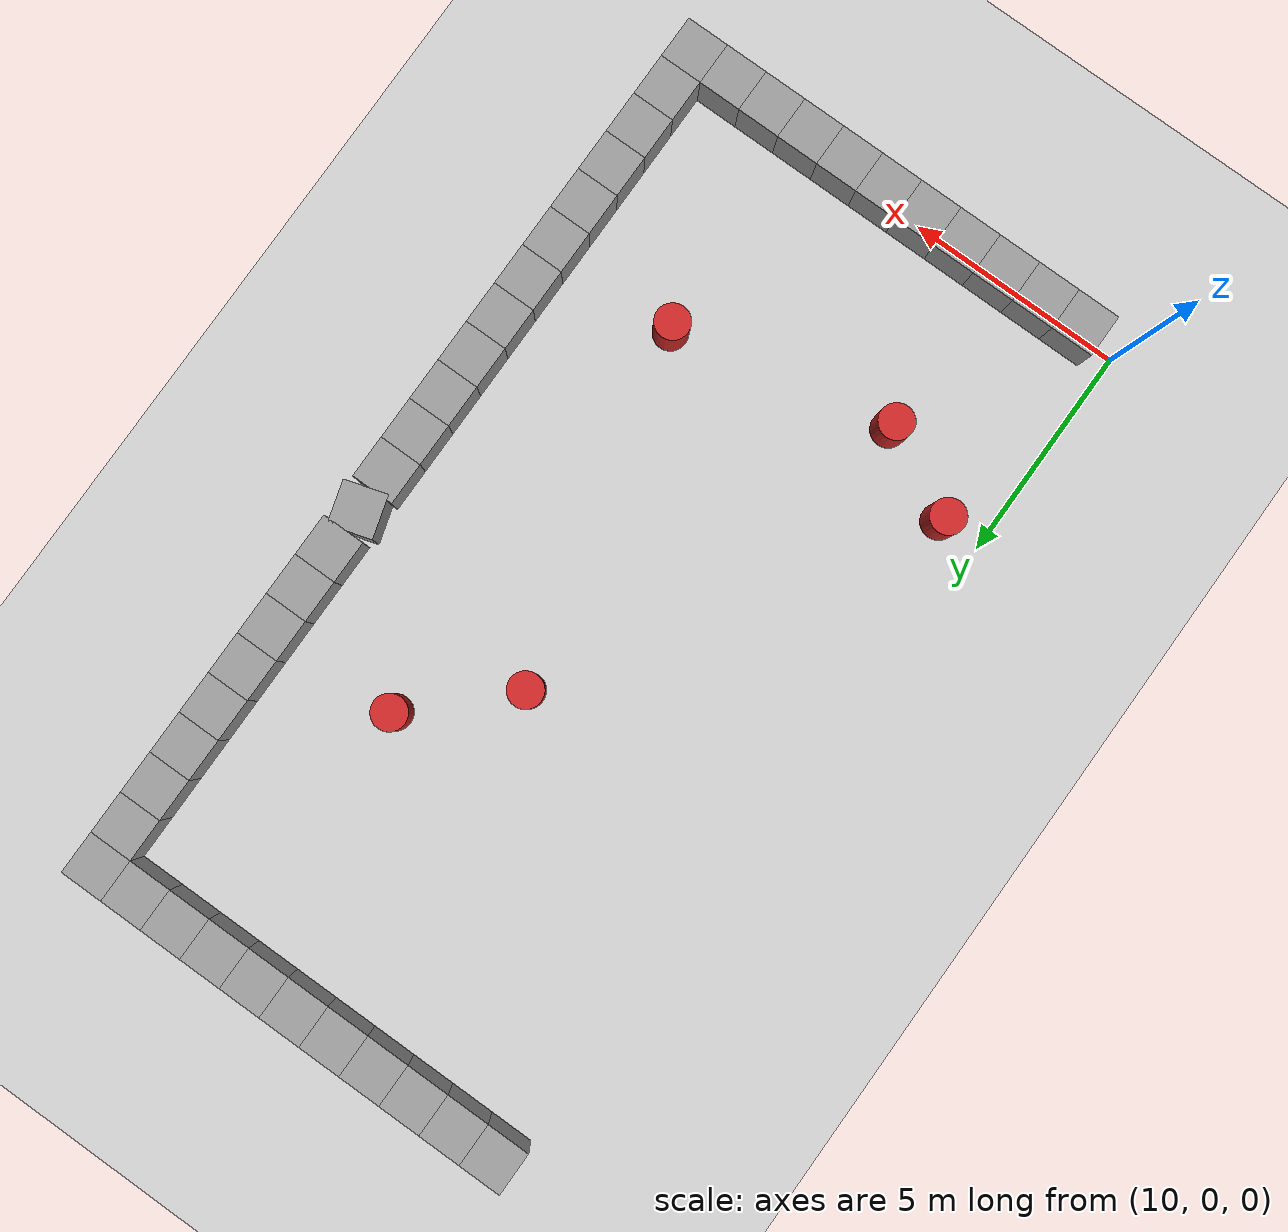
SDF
<sdf version="1.4">
 <world name="default">
  <model name="ground_plane">
   <static>1</static>
   <link name="link">
    <collision name="collision">
     <geometry><plane><normal>0 0 1</normal><size>100 100</size></plane></geometry>
     <surface><friction><ode><mu>100</mu><mu2>50</mu2></ode></friction></surface>
    </collision>
    <visual name="visual">
     <cast_shadows>0</cast_shadows>
     <geometry><plane><normal>0 0 1</normal><size>100 100</size></plane></geometry>
     <material>
      <script><uri>file://media/materials/scripts/gazebo.material</uri><name>Gazebo/Grey</name></script>
     </material>
    </visual>
    <velocity_decay><linear>0</linear><angular>0</angular></velocity_decay>
   </link>
  </model>
  <model name="unit_box_105">
   <pose>11 0 0.5 0 -0 0</pose>
   <link name="link">
    <inertial>
     <mass>1</mass>
     <inertia><ixx>1</ixx><ixy>0</ixy><ixz>0</ixz><iyy>1</iyy><iyz>0</iyz><izz>1</izz></inertia>
    </inertial>
    <collision name="collision"><geometry><box><size>1 1 1</size></box></geometry></collision>
    <visual name="visual">
     <geometry><box><size>1 1 1</size></box></geometry>
     <material>
      <script><uri>file://media/materials/scripts/gazebo.material</uri><name>Gazebo/Grey</name></script>
     </material>
    </visual>
    <velocity_decay><linear>0</linear><angular>0</angular></velocity_decay>
   </link>
   <static>1</static>
  </model>
  <model name="unit_box_106">
   <pose>12 0 0.5 0 -0 0</pose>
   <link name="link">
    <inertial>
     <mass>1</mass>
     <inertia><ixx>1</ixx><ixy>0</ixy><ixz>0</ixz><iyy>1</iyy><iyz>0</iyz><izz>1</izz></inertia>
    </inertial>
    <collision name="collision"><geometry><box><size>1 1 1</size></box></geometry></collision>
    <visual name="visual">
     <geometry><box><size>1 1 1</size></box></geometry>
     <material>
      <script><uri>file://media/materials/scripts/gazebo.material</uri><name>Gazebo/Grey</name></script>
     </material>
    </visual>
    <velocity_decay><linear>0</linear><angular>0</angular></velocity_decay>
   </link>
   <static>1</static>
  </model>
  <model name="unit_box_107">
   <pose>13 0 0.5 0 -0 0</pose>
   <link name="link">
    <inertial>
     <mass>1</mass>
     <inertia><ixx>1</ixx><ixy>0</ixy><ixz>0</ixz><iyy>1</iyy><iyz>0</iyz><izz>1</izz></inertia>
    </inertial>
    <collision name="collision"><geometry><box><size>1 1 1</size></box></geometry></collision>
    <visual name="visual">
     <geometry><box><size>1 1 1</size></box></geometry>
     <material>
      <script><uri>file://media/materials/scripts/gazebo.material</uri><name>Gazebo/Grey</name></script>
     </material>
    </visual>
    <velocity_decay><linear>0</linear><angular>0</angular></velocity_decay>
   </link>
   <static>1</static>
  </model>
  <model name="unit_box_108">
   <pose>14 0 0.5 0 -0 0</pose>
   <link name="link">
    <inertial>
     <mass>1</mass>
     <inertia><ixx>1</ixx><ixy>0</ixy><ixz>0</ixz><iyy>1</iyy><iyz>0</iyz><izz>1</izz></inertia>
    </inertial>
    <collision name="collision"><geometry><box><size>1 1 1</size></box></geometry></collision>
    <visual name="visual">
     <geometry><box><size>1 1 1</size></box></geometry>
     <material>
      <script><uri>file://media/materials/scripts/gazebo.material</uri><name>Gazebo/Grey</name></script>
     </material>
    </visual>
    <velocity_decay><linear>0</linear><angular>0</angular></velocity_decay>
   </link>
   <static>1</static>
  </model>
  <model name="unit_box_109">
   <pose>15 0 0.5 0 -0 0</pose>
   <link name="link">
    <inertial>
     <mass>1</mass>
     <inertia><ixx>1</ixx><ixy>0</ixy><ixz>0</ixz><iyy>1</iyy><iyz>0</iyz><izz>1</izz></inertia>
    </inertial>
    <collision name="collision"><geometry><box><size>1 1 1</size></box></geometry></collision>
    <visual name="visual">
     <geometry><box><size>1 1 1</size></box></geometry>
     <material>
      <script><uri>file://media/materials/scripts/gazebo.material</uri><name>Gazebo/Grey</name></script>
     </material>
    </visual>
    <velocity_decay><linear>0</linear><angular>0</angular></velocity_decay>
   </link>
   <static>1</static>
  </model>
  <model name="unit_box_110">
   <pose>16 0 0.5 0 -0 0</pose>
   <link name="link">
    <inertial>
     <mass>1</mass>
     <inertia><ixx>1</ixx><ixy>0</ixy><ixz>0</ixz><iyy>1</iyy><iyz>0</iyz><izz>1</izz></inertia>
    </inertial>
    <collision name="collision"><geometry><box><size>1 1 1</size></box></geometry></collision>
    <visual name="visual">
     <geometry><box><size>1 1 1</size></box></geometry>
     <material>
      <script><uri>file://media/materials/scripts/gazebo.material</uri><name>Gazebo/Grey</name></script>
     </material>
    </visual>
    <velocity_decay><linear>0</linear><angular>0</angular></velocity_decay>
   </link>
   <static>1</static>
  </model>
  <model name="unit_box_111">
   <pose>17 0 0.5 0 -0 0</pose>
   <link name="link">
    <inertial>
     <mass>1</mass>
     <inertia><ixx>1</ixx><ixy>0</ixy><ixz>0</ixz><iyy>1</iyy><iyz>0</iyz><izz>1</izz></inertia>
    </inertial>
    <collision name="collision"><geometry><box><size>1 1 1</size></box></geometry></collision>
    <visual name="visual">
     <geometry><box><size>1 1 1</size></box></geometry>
     <material>
      <script><uri>file://media/materials/scripts/gazebo.material</uri><name>Gazebo/Grey</name></script>
     </material>
    </visual>
    <velocity_decay><linear>0</linear><angular>0</angular></velocity_decay>
   </link>
   <static>1</static>
  </model>
  <model name="unit_box_112">
   <pose>18 0 0.5 0 -0 0</pose>
   <link name="link">
    <inertial>
     <mass>1</mass>
     <inertia><ixx>1</ixx><ixy>0</ixy><ixz>0</ixz><iyy>1</iyy><iyz>0</iyz><izz>1</izz></inertia>
    </inertial>
    <collision name="collision"><geometry><box><size>1 1 1</size></box></geometry></collision>
    <visual name="visual">
     <geometry><box><size>1 1 1</size></box></geometry>
     <material>
      <script><uri>file://media/materials/scripts/gazebo.material</uri><name>Gazebo/Grey</name></script>
     </material>
    </visual>
    <velocity_decay><linear>0</linear><angular>0</angular></velocity_decay>
   </link>
   <static>1</static>
  </model>
  <model name="unit_box_113">
   <pose>19 0 0.5 0 -0 0</pose>
   <link name="link">
    <inertial>
     <mass>1</mass>
     <inertia><ixx>1</ixx><ixy>0</ixy><ixz>0</ixz><iyy>1</iyy><iyz>0</iyz><izz>1</izz></inertia>
    </inertial>
    <collision name="collision"><geometry><box><size>1 1 1</size></box></geometry></collision>
    <visual name="visual">
     <geometry><box><size>1 1 1</size></box></geometry>
     <material>
      <script><uri>file://media/materials/scripts/gazebo.material</uri><name>Gazebo/Grey</name></script>
     </material>
    </visual>
    <velocity_decay><linear>0</linear><angular>0</angular></velocity_decay>
   </link>
   <static>1</static>
  </model>
  <model name="unit_box_114">
   <pose>20 0 0.5 0 -0 0</pose>
   <link name="link">
    <inertial>
     <mass>1</mass>
     <inertia><ixx>1</ixx><ixy>0</ixy><ixz>0</ixz><iyy>1</iyy><iyz>0</iyz><izz>1</izz></inertia>
    </inertial>
    <collision name="collision"><geometry><box><size>1 1 1</size></box></geometry></collision>
    <visual name="visual">
     <geometry><box><size>1 1 1</size></box></geometry>
     <material>
      <script><uri>file://media/materials/scripts/gazebo.material</uri><name>Gazebo/Grey</name></script>
     </material>
    </visual>
    <velocity_decay><linear>0</linear><angular>0</angular></velocity_decay>
   </link>
   <static>1</static>
  </model>
  <model name="unit_box_301">
   <pose>21 0 0.5 0 -0 0</pose>
   <link name="link">
    <inertial>
     <mass>1</mass>
     <inertia><ixx>1</ixx><ixy>0</ixy><ixz>0</ixz><iyy>1</iyy><iyz>0</iyz><izz>1</izz></inertia>
    </inertial>
    <collision name="collision"><geometry><box><size>1 1 1</size></box></geometry></collision>
    <visual name="visual">
     <geometry><box><size>1 1 1</size></box></geometry>
     <material>
      <script><uri>file://media/materials/scripts/gazebo.material</uri><name>Gazebo/Grey</name></script>
     </material>
    </visual>
    <velocity_decay><linear>0</linear><angular>0</angular></velocity_decay>
   </link>
   <static>1</static>
  </model>
  <model name="unit_box_150">
   <pose>11 21 0.5 0 -0 0</pose>
   <link name="link">
    <inertial>
     <mass>1</mass>
     <inertia><ixx>1</ixx><ixy>0</ixy><ixz>0</ixz><iyy>1</iyy><iyz>0</iyz><izz>1</izz></inertia>
    </inertial>
    <collision name="collision"><geometry><box><size>1 1 1</size></box></geometry></collision>
    <visual name="visual">
     <geometry><box><size>1 1 1</size></box></geometry>
     <material>
      <script><uri>file://media/materials/scripts/gazebo.material</uri><name>Gazebo/Grey</name></script>
     </material>
    </visual>
    <velocity_decay><linear>0</linear><angular>0</angular></velocity_decay>
   </link>
   <static>1</static>
  </model>
  <model name="unit_box_151">
   <pose>12 21 0.5 0 -0 0</pose>
   <link name="link">
    <inertial>
     <mass>1</mass>
     <inertia><ixx>1</ixx><ixy>0</ixy><ixz>0</ixz><iyy>1</iyy><iyz>0</iyz><izz>1</izz></inertia>
    </inertial>
    <collision name="collision"><geometry><box><size>1 1 1</size></box></geometry></collision>
    <visual name="visual">
     <geometry><box><size>1 1 1</size></box></geometry>
     <material>
      <script><uri>file://media/materials/scripts/gazebo.material</uri><name>Gazebo/Grey</name></script>
     </material>
    </visual>
    <velocity_decay><linear>0</linear><angular>0</angular></velocity_decay>
   </link>
   <static>1</static>
  </model>
  <model name="unit_box_152">
   <pose>13 21 0.5 0 -0 0</pose>
   <link name="link">
    <inertial>
     <mass>1</mass>
     <inertia><ixx>1</ixx><ixy>0</ixy><ixz>0</ixz><iyy>1</iyy><iyz>0</iyz><izz>1</izz></inertia>
    </inertial>
    <collision name="collision"><geometry><box><size>1 1 1</size></box></geometry></collision>
    <visual name="visual">
     <geometry><box><size>1 1 1</size></box></geometry>
     <material>
      <script><uri>file://media/materials/scripts/gazebo.material</uri><name>Gazebo/Grey</name></script>
     </material>
    </visual>
    <velocity_decay><linear>0</linear><angular>0</angular></velocity_decay>
   </link>
   <static>1</static>
  </model>
  <model name="unit_box_153">
   <pose>14 21 0.5 0 -0 0</pose>
   <link name="link">
    <inertial>
     <mass>1</mass>
     <inertia><ixx>1</ixx><ixy>0</ixy><ixz>0</ixz><iyy>1</iyy><iyz>0</iyz><izz>1</izz></inertia>
    </inertial>
    <collision name="collision"><geometry><box><size>1 1 1</size></box></geometry></collision>
    <visual name="visual">
     <geometry><box><size>1 1 1</size></box></geometry>
     <material>
      <script><uri>file://media/materials/scripts/gazebo.material</uri><name>Gazebo/Grey</name></script>
     </material>
    </visual>
    <velocity_decay><linear>0</linear><angular>0</angular></velocity_decay>
   </link>
   <static>1</static>
  </model>
  <model name="unit_box_154">
   <pose>15 21 0.5 0 -0 0</pose>
   <link name="link">
    <inertial>
     <mass>1</mass>
     <inertia><ixx>1</ixx><ixy>0</ixy><ixz>0</ixz><iyy>1</iyy><iyz>0</iyz><izz>1</izz></inertia>
    </inertial>
    <collision name="collision"><geometry><box><size>1 1 1</size></box></geometry></collision>
    <visual name="visual">
     <geometry><box><size>1 1 1</size></box></geometry>
     <material>
      <script><uri>file://media/materials/scripts/gazebo.material</uri><name>Gazebo/Grey</name></script>
     </material>
    </visual>
    <velocity_decay><linear>0</linear><angular>0</angular></velocity_decay>
   </link>
   <static>1</static>
  </model>
  <model name="unit_box_155">
   <pose>16 21 0.5 0 -0 0</pose>
   <link name="link">
    <inertial>
     <mass>1</mass>
     <inertia><ixx>1</ixx><ixy>0</ixy><ixz>0</ixz><iyy>1</iyy><iyz>0</iyz><izz>1</izz></inertia>
    </inertial>
    <collision name="collision"><geometry><box><size>1 1 1</size></box></geometry></collision>
    <visual name="visual">
     <geometry><box><size>1 1 1</size></box></geometry>
     <material>
      <script><uri>file://media/materials/scripts/gazebo.material</uri><name>Gazebo/Grey</name></script>
     </material>
    </visual>
    <velocity_decay><linear>0</linear><angular>0</angular></velocity_decay>
   </link>
   <static>1</static>
  </model>
  <model name="unit_box_156">
   <pose>17 21 0.5 0 -0 0</pose>
   <link name="link">
    <inertial>
     <mass>1</mass>
     <inertia><ixx>1</ixx><ixy>0</ixy><ixz>0</ixz><iyy>1</iyy><iyz>0</iyz><izz>1</izz></inertia>
    </inertial>
    <collision name="collision"><geometry><box><size>1 1 1</size></box></geometry></collision>
    <visual name="visual">
     <geometry><box><size>1 1 1</size></box></geometry>
     <material>
      <script><uri>file://media/materials/scripts/gazebo.material</uri><name>Gazebo/Grey</name></script>
     </material>
    </visual>
    <velocity_decay><linear>0</linear><angular>0</angular></velocity_decay>
   </link>
   <static>1</static>
  </model>
  <model name="unit_box_157">
   <pose>18 21 0.5 0 -0 0</pose>
   <link name="link">
    <inertial>
     <mass>1</mass>
     <inertia><ixx>1</ixx><ixy>0</ixy><ixz>0</ixz><iyy>1</iyy><iyz>0</iyz><izz>1</izz></inertia>
    </inertial>
    <collision name="collision"><geometry><box><size>1 1 1</size></box></geometry></collision>
    <visual name="visual">
     <geometry><box><size>1 1 1</size></box></geometry>
     <material>
      <script><uri>file://media/materials/scripts/gazebo.material</uri><name>Gazebo/Grey</name></script>
     </material>
    </visual>
    <velocity_decay><linear>0</linear><angular>0</angular></velocity_decay>
   </link>
   <static>1</static>
  </model>
  <model name="unit_box_158">
   <pose>19 21 0.5 0 -0 0</pose>
   <link name="link">
    <inertial>
     <mass>1</mass>
     <inertia><ixx>1</ixx><ixy>0</ixy><ixz>0</ixz><iyy>1</iyy><iyz>0</iyz><izz>1</izz></inertia>
    </inertial>
    <collision name="collision"><geometry><box><size>1 1 1</size></box></geometry></collision>
    <visual name="visual">
     <geometry><box><size>1 1 1</size></box></geometry>
     <material>
      <script><uri>file://media/materials/scripts/gazebo.material</uri><name>Gazebo/Grey</name></script>
     </material>
    </visual>
    <velocity_decay><linear>0</linear><angular>0</angular></velocity_decay>
   </link>
   <static>1</static>
  </model>
  <model name="unit_box_159">
   <pose>20 21 0.5 0 -0 0</pose>
   <link name="link">
    <inertial>
     <mass>1</mass>
     <inertia><ixx>1</ixx><ixy>0</ixy><ixz>0</ixz><iyy>1</iyy><iyz>0</iyz><izz>1</izz></inertia>
    </inertial>
    <collision name="collision"><geometry><box><size>1 1 1</size></box></geometry></collision>
    <visual name="visual">
     <geometry><box><size>1 1 1</size></box></geometry>
     <material>
      <script><uri>file://media/materials/scripts/gazebo.material</uri><name>Gazebo/Grey</name></script>
     </material>
    </visual>
    <velocity_decay><linear>0</linear><angular>0</angular></velocity_decay>
   </link>
   <static>1</static>
  </model>
  <model name="unit_box_302">
   <pose>21 21 0.5 0 -0 0</pose>
   <link name="link">
    <inertial>
     <mass>1</mass>
     <inertia><ixx>1</ixx><ixy>0</ixy><ixz>0</ixz><iyy>1</iyy><iyz>0</iyz><izz>1</izz></inertia>
    </inertial>
    <collision name="collision"><geometry><box><size>1 1 1</size></box></geometry></collision>
    <visual name="visual">
     <geometry><box><size>1 1 1</size></box></geometry>
     <material>
      <script><uri>file://media/materials/scripts/gazebo.material</uri><name>Gazebo/Grey</name></script>
     </material>
    </visual>
    <velocity_decay><linear>0</linear><angular>0</angular></velocity_decay>
   </link>
   <static>1</static>
  </model>
  <model name="unit_box_160">
   <pose>21 1 0.5 0 -0 0</pose>
   <link name="link">
    <inertial>
     <mass>1</mass>
     <inertia><ixx>1</ixx><ixy>0</ixy><ixz>0</ixz><iyy>1</iyy><iyz>0</iyz><izz>1</izz></inertia>
    </inertial>
    <collision name="collision"><geometry><box><size>1 1 1</size></box></geometry></collision>
    <visual name="visual">
     <geometry><box><size>1 1 1</size></box></geometry>
     <material>
      <script><uri>file://media/materials/scripts/gazebo.material</uri><name>Gazebo/Grey</name></script>
     </material>
    </visual>
    <velocity_decay><linear>0</linear><angular>0</angular></velocity_decay>
   </link>
   <static>1</static>
  </model>
  <model name="unit_box_161">
   <pose>21 2 0.5 0 -0 0</pose>
   <link name="link">
    <inertial>
     <mass>1</mass>
     <inertia><ixx>1</ixx><ixy>0</ixy><ixz>0</ixz><iyy>1</iyy><iyz>0</iyz><izz>1</izz></inertia>
    </inertial>
    <collision name="collision"><geometry><box><size>1 1 1</size></box></geometry></collision>
    <visual name="visual">
     <geometry><box><size>1 1 1</size></box></geometry>
     <material>
      <script><uri>file://media/materials/scripts/gazebo.material</uri><name>Gazebo/Grey</name></script>
     </material>
    </visual>
    <velocity_decay><linear>0</linear><angular>0</angular></velocity_decay>
   </link>
   <static>1</static>
  </model>
  <model name="unit_box_162">
   <pose>21 3 0.5 0 -0 0</pose>
   <link name="link">
    <inertial>
     <mass>1</mass>
     <inertia><ixx>1</ixx><ixy>0</ixy><ixz>0</ixz><iyy>1</iyy><iyz>0</iyz><izz>1</izz></inertia>
    </inertial>
    <collision name="collision"><geometry><box><size>1 1 1</size></box></geometry></collision>
    <visual name="visual">
     <geometry><box><size>1 1 1</size></box></geometry>
     <material>
      <script><uri>file://media/materials/scripts/gazebo.material</uri><name>Gazebo/Grey</name></script>
     </material>
    </visual>
    <velocity_decay><linear>0</linear><angular>0</angular></velocity_decay>
   </link>
   <static>1</static>
  </model>
  <model name="unit_box_182">
   <pose>21 4 0.5 0 -0 0</pose>
   <link name="link">
    <inertial>
     <mass>1</mass>
     <inertia><ixx>1</ixx><ixy>0</ixy><ixz>0</ixz><iyy>1</iyy><iyz>0</iyz><izz>1</izz></inertia>
    </inertial>
    <collision name="collision"><geometry><box><size>1 1 1</size></box></geometry></collision>
    <visual name="visual">
     <geometry><box><size>1 1 1</size></box></geometry>
     <material>
      <script><uri>file://media/materials/scripts/gazebo.material</uri><name>Gazebo/Grey</name></script>
     </material>
    </visual>
    <velocity_decay><linear>0</linear><angular>0</angular></velocity_decay>
   </link>
   <static>1</static>
  </model>
  <model name="unit_box_188">
   <pose>21 5 0.5 0 -0 0</pose>
   <link name="link">
    <inertial>
     <mass>1</mass>
     <inertia><ixx>1</ixx><ixy>0</ixy><ixz>0</ixz><iyy>1</iyy><iyz>0</iyz><izz>1</izz></inertia>
    </inertial>
    <collision name="collision"><geometry><box><size>1 1 1</size></box></geometry></collision>
    <visual name="visual">
     <geometry><box><size>1 1 1</size></box></geometry>
     <material>
      <script><uri>file://media/materials/scripts/gazebo.material</uri><name>Gazebo/Grey</name></script>
     </material>
    </visual>
    <velocity_decay><linear>0</linear><angular>0</angular></velocity_decay>
   </link>
   <static>1</static>
  </model>
  <model name="unit_box_189">
   <pose>21 6 0.5 0 -0 0</pose>
   <link name="link">
    <inertial>
     <mass>1</mass>
     <inertia><ixx>1</ixx><ixy>0</ixy><ixz>0</ixz><iyy>1</iyy><iyz>0</iyz><izz>1</izz></inertia>
    </inertial>
    <collision name="collision"><geometry><box><size>1 1 1</size></box></geometry></collision>
    <visual name="visual">
     <geometry><box><size>1 1 1</size></box></geometry>
     <material>
      <script><uri>file://media/materials/scripts/gazebo.material</uri><name>Gazebo/Grey</name></script>
     </material>
    </visual>
    <velocity_decay><linear>0</linear><angular>0</angular></velocity_decay>
   </link>
   <static>1</static>
  </model>
  <model name="unit_box_190">
   <pose>21 7 0.5 0 -0 0</pose>
   <link name="link">
    <inertial>
     <mass>1</mass>
     <inertia><ixx>1</ixx><ixy>0</ixy><ixz>0</ixz><iyy>1</iyy><iyz>0</iyz><izz>1</izz></inertia>
    </inertial>
    <collision name="collision"><geometry><box><size>1 1 1</size></box></geometry></collision>
    <visual name="visual">
     <geometry><box><size>1 1 1</size></box></geometry>
     <material>
      <script><uri>file://media/materials/scripts/gazebo.material</uri><name>Gazebo/Grey</name></script>
     </material>
    </visual>
    <velocity_decay><linear>0</linear><angular>0</angular></velocity_decay>
   </link>
   <static>1</static>
  </model>
  <model name="unit_box_191">
   <pose>21 8 0.5 0 -0 0</pose>
   <link name="link">
    <inertial>
     <mass>1</mass>
     <inertia><ixx>1</ixx><ixy>0</ixy><ixz>0</ixz><iyy>1</iyy><iyz>0</iyz><izz>1</izz></inertia>
    </inertial>
    <collision name="collision"><geometry><box><size>1 1 1</size></box></geometry></collision>
    <visual name="visual">
     <geometry><box><size>1 1 1</size></box></geometry>
     <material>
      <script><uri>file://media/materials/scripts/gazebo.material</uri><name>Gazebo/Grey</name></script>
     </material>
    </visual>
    <velocity_decay><linear>0</linear><angular>0</angular></velocity_decay>
   </link>
   <static>1</static>
  </model>
  <model name="unit_box_192">
   <pose>21 9 0.5 0 -0 0</pose>
   <link name="link">
    <inertial>
     <mass>1</mass>
     <inertia><ixx>1</ixx><ixy>0</ixy><ixz>0</ixz><iyy>1</iyy><iyz>0</iyz><izz>1</izz></inertia>
    </inertial>
    <collision name="collision"><geometry><box><size>1 1 1</size></box></geometry></collision>
    <visual name="visual">
     <geometry><box><size>1 1 1</size></box></geometry>
     <material>
      <script><uri>file://media/materials/scripts/gazebo.material</uri><name>Gazebo/Grey</name></script>
     </material>
    </visual>
    <velocity_decay><linear>0</linear><angular>0</angular></velocity_decay>
   </link>
   <static>1</static>
  </model>
  <model name="unit_box_194">
   <pose>21 10 0.5 0 -0 0</pose>
   <link name="link">
    <inertial>
     <mass>1</mass>
     <inertia><ixx>1</ixx><ixy>0</ixy><ixz>0</ixz><iyy>1</iyy><iyz>0</iyz><izz>1</izz></inertia>
    </inertial>
    <collision name="collision"><geometry><box><size>1 1 1</size></box></geometry></collision>
    <visual name="visual">
     <geometry><box><size>1 1 1</size></box></geometry>
     <material>
      <script><uri>file://media/materials/scripts/gazebo.material</uri><name>Gazebo/Grey</name></script>
     </material>
    </visual>
    <velocity_decay><linear>0</linear><angular>0</angular></velocity_decay>
   </link>
   <static>1</static>
  </model>
  <model name="unit_box_195">
   <pose>21 11 0.5 0 -0 0</pose>
   <link name="link">
    <inertial>
     <mass>1</mass>
     <inertia><ixx>1</ixx><ixy>0</ixy><ixz>0</ixz><iyy>1</iyy><iyz>0</iyz><izz>1</izz></inertia>
    </inertial>
    <collision name="collision"><geometry><box><size>1 1 1</size></box></geometry></collision>
    <visual name="visual">
     <geometry><box><size>1 1 1</size></box></geometry>
     <material>
      <script><uri>file://media/materials/scripts/gazebo.material</uri><name>Gazebo/Grey</name></script>
     </material>
    </visual>
    <velocity_decay><linear>0</linear><angular>0</angular></velocity_decay>
   </link>
   <static>1</static>
  </model>
  <model name="unit_box_196">
   <pose>21 12 0.5 0 -0 05</pose>
   <link name="link">
    <inertial>
     <mass>1</mass>
     <inertia><ixx>1</ixx><ixy>0</ixy><ixz>0</ixz><iyy>1</iyy><iyz>0</iyz><izz>1</izz></inertia>
    </inertial>
    <collision name="collision"><geometry><box><size>1 1 1</size></box></geometry></collision>
    <visual name="visual">
     <geometry><box><size>1 1 1</size></box></geometry>
     <material>
      <script><uri>file://media/materials/scripts/gazebo.material</uri><name>Gazebo/Grey</name></script>
     </material>
    </visual>
    <velocity_decay><linear>0</linear><angular>0</angular></velocity_decay>
   </link>
   <static>1</static>
  </model>
  <model name="unit_box_197">
   <pose>21 13 0.5 0 -0 0</pose>
   <link name="link">
    <inertial>
     <mass>1</mass>
     <inertia><ixx>1</ixx><ixy>0</ixy><ixz>0</ixz><iyy>1</iyy><iyz>0</iyz><izz>1</izz></inertia>
    </inertial>
    <collision name="collision"><geometry><box><size>1 1 1</size></box></geometry></collision>
    <visual name="visual">
     <geometry><box><size>1 1 1</size></box></geometry>
     <material>
      <script><uri>file://media/materials/scripts/gazebo.material</uri><name>Gazebo/Grey</name></script>
     </material>
    </visual>
    <velocity_decay><linear>0</linear><angular>0</angular></velocity_decay>
   </link>
   <static>1</static>
  </model>
  <model name="unit_box_198">
   <pose>21 14 0.5 0 -0 0</pose>
   <link name="link">
    <inertial>
     <mass>1</mass>
     <inertia><ixx>1</ixx><ixy>0</ixy><ixz>0</ixz><iyy>1</iyy><iyz>0</iyz><izz>1</izz></inertia>
    </inertial>
    <collision name="collision"><geometry><box><size>1 1 1</size></box></geometry></collision>
    <visual name="visual">
     <geometry><box><size>1 1 1</size></box></geometry>
     <material>
      <script><uri>file://media/materials/scripts/gazebo.material</uri><name>Gazebo/Grey</name></script>
     </material>
    </visual>
    <velocity_decay><linear>0</linear><angular>0</angular></velocity_decay>
   </link>
   <static>1</static>
  </model>
  <model name="unit_box_199">
   <pose>21 15 0.5 0 -0 0</pose>
   <link name="link">
    <inertial>
     <mass>1</mass>
     <inertia><ixx>1</ixx><ixy>0</ixy><ixz>0</ixz><iyy>1</iyy><iyz>0</iyz><izz>1</izz></inertia>
    </inertial>
    <collision name="collision"><geometry><box><size>1 1 1</size></box></geometry></collision>
    <visual name="visual">
     <geometry><box><size>1 1 1</size></box></geometry>
     <material>
      <script><uri>file://media/materials/scripts/gazebo.material</uri><name>Gazebo/Grey</name></script>
     </material>
    </visual>
    <velocity_decay><linear>0</linear><angular>0</angular></velocity_decay>
   </link>
   <static>1</static>
  </model>
  <model name="unit_box_204">
   <pose>21 16 0.5 0 0 0</pose>
   <link name="link">
    <inertial>
     <mass>1</mass>
     <inertia><ixx>1</ixx><ixy>0</ixy><ixz>0</ixz><iyy>1</iyy><iyz>0</iyz><izz>1</izz></inertia>
    </inertial>
    <collision name="collision"><geometry><box><size>1 1 1</size></box></geometry></collision>
    <visual name="visual">
     <geometry><box><size>1 1 1</size></box></geometry>
     <material>
      <script><uri>file://media/materials/scripts/gazebo.material</uri><name>Gazebo/Grey</name></script>
     </material>
    </visual>
    <velocity_decay><linear>0</linear><angular>0</angular></velocity_decay>
   </link>
   <static>1</static>
  </model>
  <model name="unit_box_205">
   <pose>21 17 0.5 0 0 0</pose>
   <link name="link">
    <inertial>
     <mass>1</mass>
     <inertia><ixx>1</ixx><ixy>0</ixy><ixz>0</ixz><iyy>1</iyy><iyz>0</iyz><izz>1</izz></inertia>
    </inertial>
    <collision name="collision"><geometry><box><size>1 1 1</size></box></geometry></collision>
    <visual name="visual">
     <geometry><box><size>1 1 1</size></box></geometry>
     <material>
      <script><uri>file://media/materials/scripts/gazebo.material</uri><name>Gazebo/Grey</name></script>
     </material>
    </visual>
    <velocity_decay><linear>0</linear><angular>0</angular></velocity_decay>
   </link>
   <static>1</static>
  </model>
  <model name="unit_box_206">
   <pose>21 18 0.5 0 0 0</pose>
   <link name="link">
    <inertial>
     <mass>1</mass>
     <inertia><ixx>1</ixx><ixy>0</ixy><ixz>0</ixz><iyy>1</iyy><iyz>0</iyz><izz>1</izz></inertia>
    </inertial>
    <collision name="collision"><geometry><box><size>1 1 1</size></box></geometry></collision>
    <visual name="visual">
     <geometry><box><size>1 1 1</size></box></geometry>
     <material>
      <script><uri>file://media/materials/scripts/gazebo.material</uri><name>Gazebo/Grey</name></script>
     </material>
    </visual>
    <velocity_decay><linear>0</linear><angular>0</angular></velocity_decay>
   </link>
   <static>1</static>
  </model>
  <model name="unit_box_207">
   <pose>21 19 0.5 0 0 0</pose>
   <link name="link">
    <inertial>
     <mass>1</mass>
     <inertia><ixx>1</ixx><ixy>0</ixy><ixz>0</ixz><iyy>1</iyy><iyz>0</iyz><izz>1</izz></inertia>
    </inertial>
    <collision name="collision"><geometry><box><size>1 1 1</size></box></geometry></collision>
    <visual name="visual">
     <geometry><box><size>1 1 1</size></box></geometry>
     <material>
      <script><uri>file://media/materials/scripts/gazebo.material</uri><name>Gazebo/Grey</name></script>
     </material>
    </visual>
    <velocity_decay><linear>0</linear><angular>0</angular></velocity_decay>
   </link>
   <static>1</static>
  </model>
  <model name="unit_box_208">
   <pose>21 20 0.5 -0 -0 0</pose>
   <link name="link">
    <inertial>
     <mass>1</mass>
     <inertia><ixx>1</ixx><ixy>0</ixy><ixz>0</ixz><iyy>1</iyy><iyz>0</iyz><izz>1</izz></inertia>
    </inertial>
    <collision name="collision"><geometry><box><size>1 1 1</size></box></geometry></collision>
    <visual name="visual">
     <geometry><box><size>1 1 1</size></box></geometry>
     <material>
      <script><uri>file://media/materials/scripts/gazebo.material</uri><name>Gazebo/Grey</name></script>
     </material>
    </visual>
    <velocity_decay><linear>0</linear><angular>0</angular></velocity_decay>
   </link>
   <static>1</static>
  </model>
  <model name="unit_cylinder_3">
   <pose>16 13 0.5 0 -0 0</pose>
   <link name="link">
    <inertial>
     <mass>1</mass>
     <inertia><ixx>1</ixx><ixy>0</ixy><ixz>0</ixz><iyy>1</iyy><iyz>0</iyz><izz>1</izz></inertia>
    </inertial>
    <collision name="collision">
     <geometry><cylinder><radius>0.40</radius><length>1</length></cylinder></geometry>
    </collision>
    <visual name="visual">
     <geometry><cylinder><radius>0.40</radius><length>1</length></cylinder></geometry>
     <material>
      <script><uri>file://media/materials/scripts/gazebo.material</uri><name>Gazebo/Red</name></script>
     </material>
    </visual>
    <velocity_decay><linear>0</linear><angular>0</angular></velocity_decay>
   </link>
   <static>1</static>
  </model>
  <model name="unit_cylinder_7">
   <pose>11 5 0.5 0 -0 0</pose>
   <link name="link">
    <inertial>
     <mass>1</mass>
     <inertia><ixx>1</ixx><ixy>0</ixy><ixz>0</ixz><iyy>1</iyy><iyz>0</iyz><izz>1</izz></inertia>
    </inertial>
    <collision name="collision">
     <geometry><cylinder><radius>0.40</radius><length>1</length></cylinder></geometry>
    </collision>
    <visual name="visual">
     <geometry><cylinder><radius>0.40</radius><length>1</length></cylinder></geometry>
     <material>
      <script><uri>file://media/materials/scripts/gazebo.material</uri><name>Gazebo/Red</name></script>
     </material>
    </visual>
    <velocity_decay><linear>0</linear><angular>0</angular></velocity_decay>
   </link>
   <static>1</static>
  </model>
  <model name="unit_cylinder_8">
   <pose>18 15 0.5 0 -0 0</pose>
   <link name="link">
    <inertial>
     <mass>1</mass>
     <inertia><ixx>1</ixx><ixy>0</ixy><ixz>0</ixz><iyy>1</iyy><iyz>0</iyz><izz>1</izz></inertia>
    </inertial>
    <collision name="collision">
     <geometry><cylinder><radius>0.40</radius><length>1</length></cylinder></geometry>
    </collision>
    <visual name="visual">
     <geometry><cylinder><radius>0.40</radius><length>1</length></cylinder></geometry>
     <material>
      <script><uri>file://media/materials/scripts/gazebo.material</uri><name>Gazebo/Red</name></script>
     </material>
    </visual>
    <velocity_decay><linear>0</linear><angular>0</angular></velocity_decay>
   </link>
   <static>1</static>
  </model>
  <model name="unit_cylinder_9">
   <pose>13 4 0.5 0 -0 0</pose>
   <link name="link">
    <inertial>
     <mass>1</mass>
     <inertia><ixx>1</ixx><ixy>0</ixy><ixz>0</ixz><iyy>1</iyy><iyz>0</iyz><izz>1</izz></inertia>
    </inertial>
    <collision name="collision">
     <geometry><cylinder><radius>0.40</radius><length>1</length></cylinder></geometry>
    </collision>
    <visual name="visual">
     <geometry><cylinder><radius>0.40</radius><length>1</length></cylinder></geometry>
     <material>
      <script><uri>file://media/materials/scripts/gazebo.material</uri><name>Gazebo/Red</name></script>
     </material>
    </visual>
    <velocity_decay><linear>0</linear><angular>0</angular></velocity_decay>
   </link>
   <static>1</static>
  </model>
  <model name="unit_cylinder_10">
   <pose>18 5 0.5 0 -0 0</pose>
   <link name="link">
    <inertial>
     <mass>1</mass>
     <inertia><ixx>1</ixx><ixy>0</ixy><ixz>0</ixz><iyy>1</iyy><iyz>0</iyz><izz>1</izz></inertia>
    </inertial>
    <collision name="collision">
     <geometry><cylinder><radius>0.40</radius><length>1</length></cylinder></geometry>
    </collision>
    <visual name="visual">
     <geometry><cylinder><radius>0.40</radius><length>1</length></cylinder></geometry>
     <material>
      <script><uri>file://media/materials/scripts/gazebo.material</uri><name>Gazebo/Red</name></script>
     </material>
    </visual>
    <velocity_decay><linear>0</linear><angular>0</angular></velocity_decay>
   </link>
   <static>1</static>
  </model>
 </world>
</sdf>
